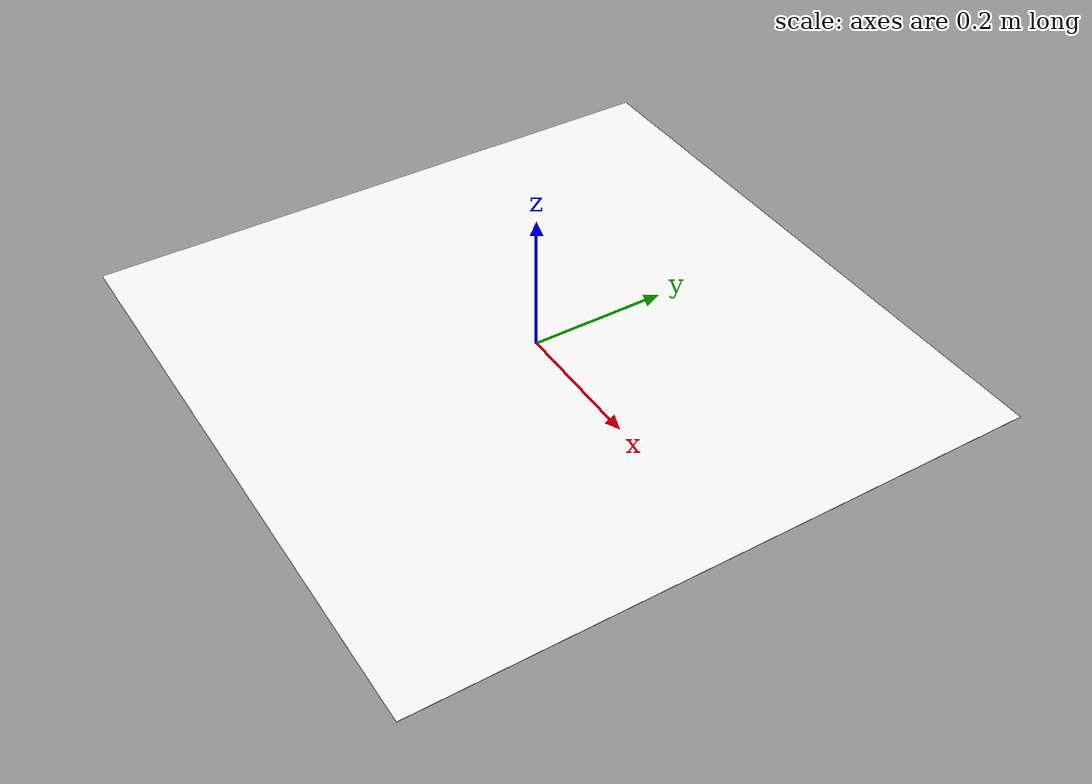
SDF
<?xml version="1.0" ?>
<sdf version="1.11">
  <![CDATA[
    gz service -s /world/shapes/set_pose \
               --reqtype gz.msgs.Pose --reptype gz.msgs.Boolean \
               --timeout 300 --req 'name: "box", position: {z: 5.0}'
  ]]>
  <model name="apriltag_tag36h11_0">
    <pose>0 0 0 0 0 0</pose>  <!-- Позиция в мире: x y z roll pitch yaw -->
    <static>true</static>  <!-- Статичная модель -->
    <link name="apriltag_tag36h11_0_link">
      <visual name="apriltag_tag36h11_0_visual">
        <geometry>
          <box>
            <size>0.9 0.9 0.001</size>  <!-- Размер метки: 20x20 см, толщина 0.1 см -->
          </box>
        </geometry>
        <material>
          <pbr>
            <metal>
              <albedo_map>model://apriltag_tag36h11_0/tag36_11_00000_highres.png</albedo_map>
              <metalness>0.0</metalness>  <!-- 0 для неметалла -->
              <roughness>0.5</roughness>  <!-- Шероховатость, подстройте -->
            </metal>
          </pbr>
          <diffuse>1 1 1 1</diffuse>
        </material>
      </visual>
      <collision name="apriltag_tag36h11_0_collision">
        <geometry>
          <box>
            <size>0.9 0.9 0.001</size>
          </box>
        </geometry>
      </collision>
    </link>

  </model>

</sdf>
